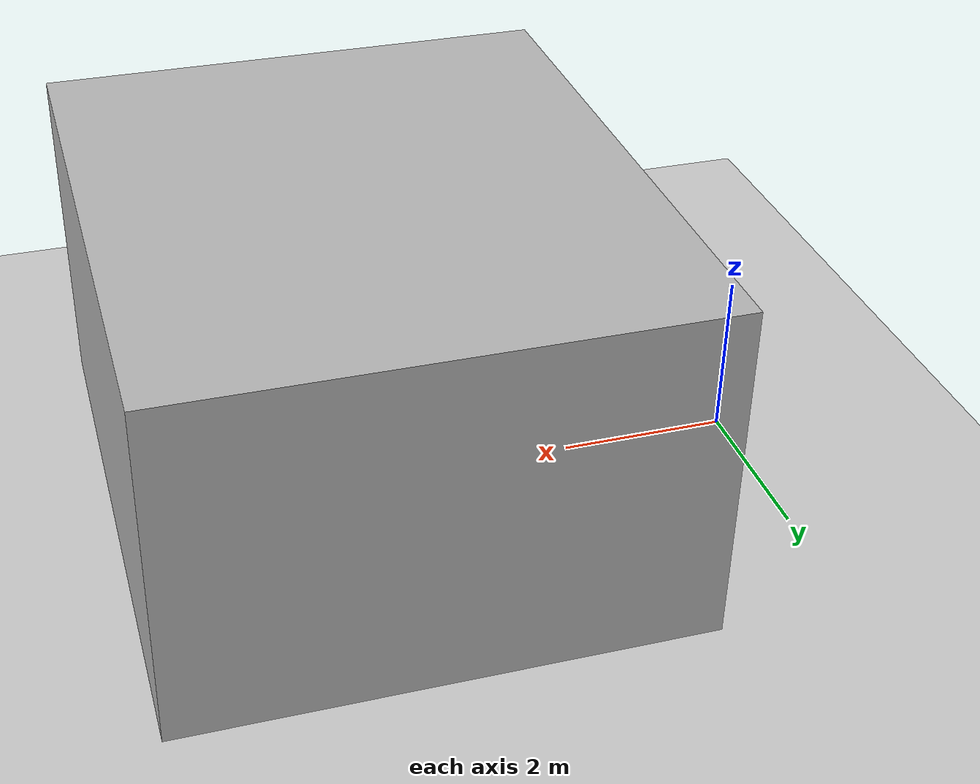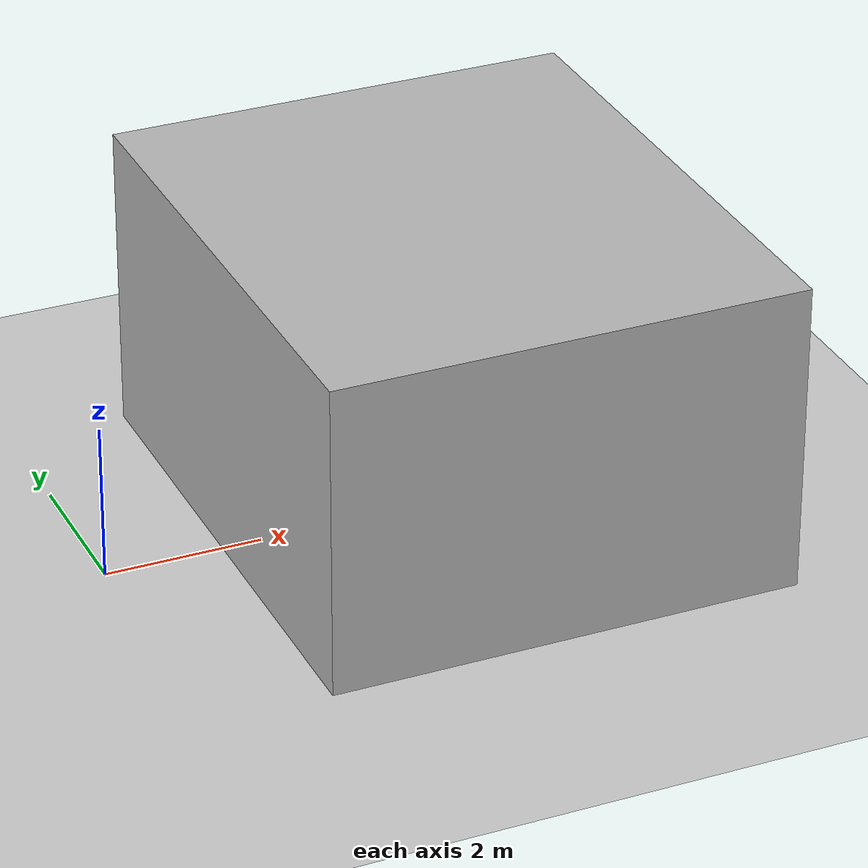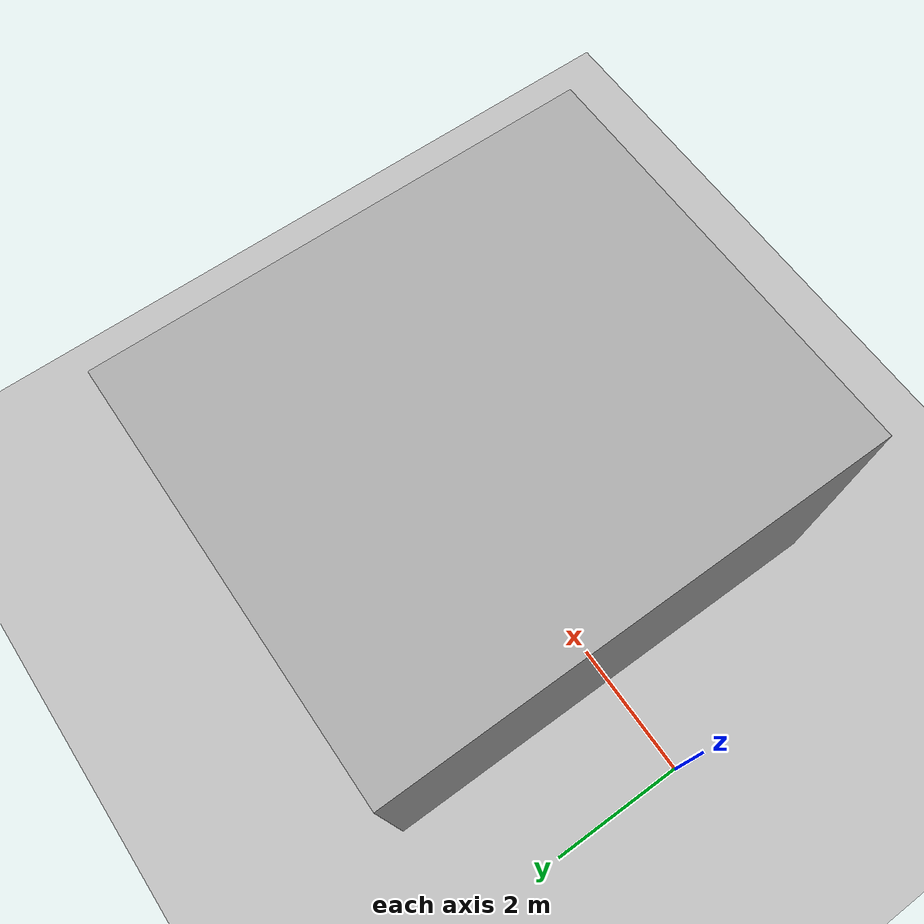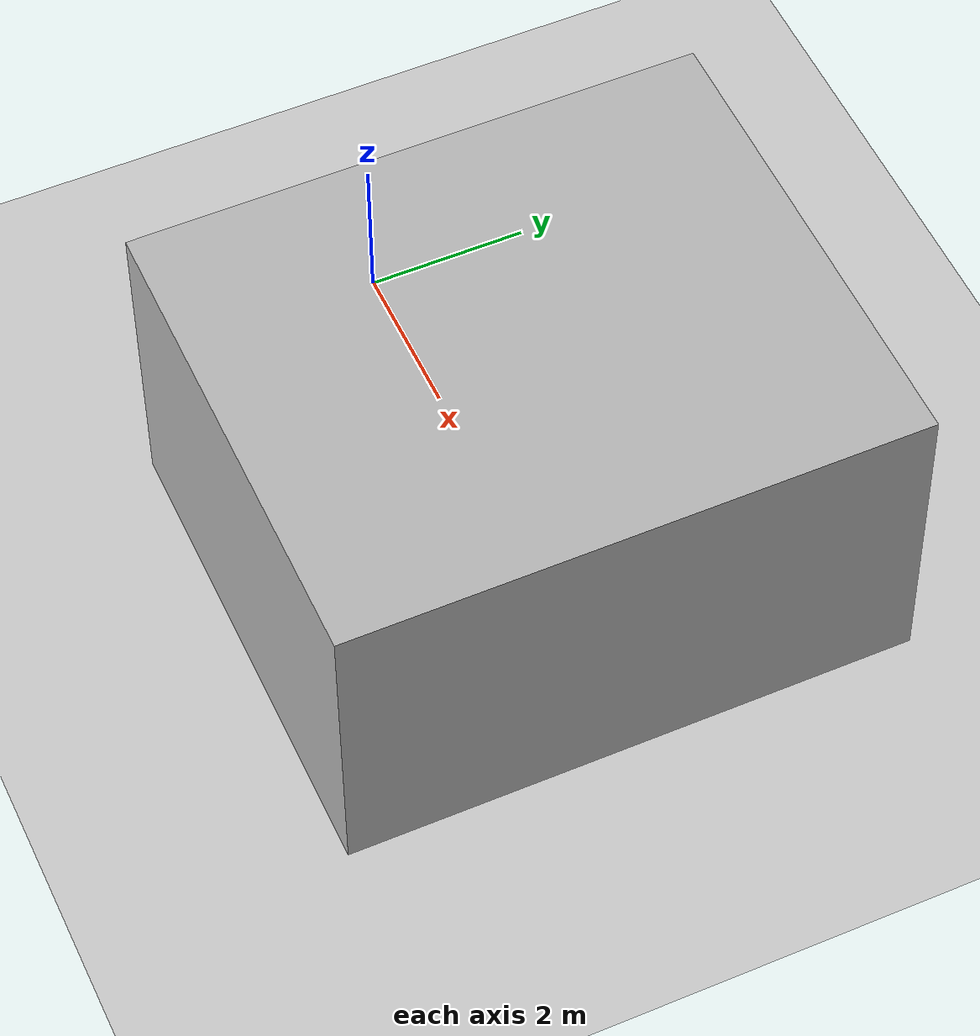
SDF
<?xml version="1.0"?>
<sdf version="1.4">
  <world name="default">
    <include>
      <uri>model://ground_plane</uri>
    </include>

    <include>
      <uri>model://sun</uri>
    </include>

    <physics type='ode'>
  <max_step_size>0.010000</max_step_size>
  <gravity>0.000000 0.000000 -9.800000</gravity>
</physics>
<model name ='box8'>
    <static>true</static>
    <pose>4.5 0 2 0 0 0</pose>
    <link name ='link'>
      <collision name ='collision'>
        <geometry>
          <box><size>6 7 4</size></box>
        </geometry>
      </collision>
      <visual name ='visual'>
        <geometry>
          <box><size>6 7 4</size></box>
        </geometry>
      </visual>
    </link>
  </model>

    <plugin name="menge_congregate" filename="libmenge_congregate.so">
         <menge_project_file>examples/core/cong.xml</menge_project_file>
    </plugin>
  </world>
</sdf>
